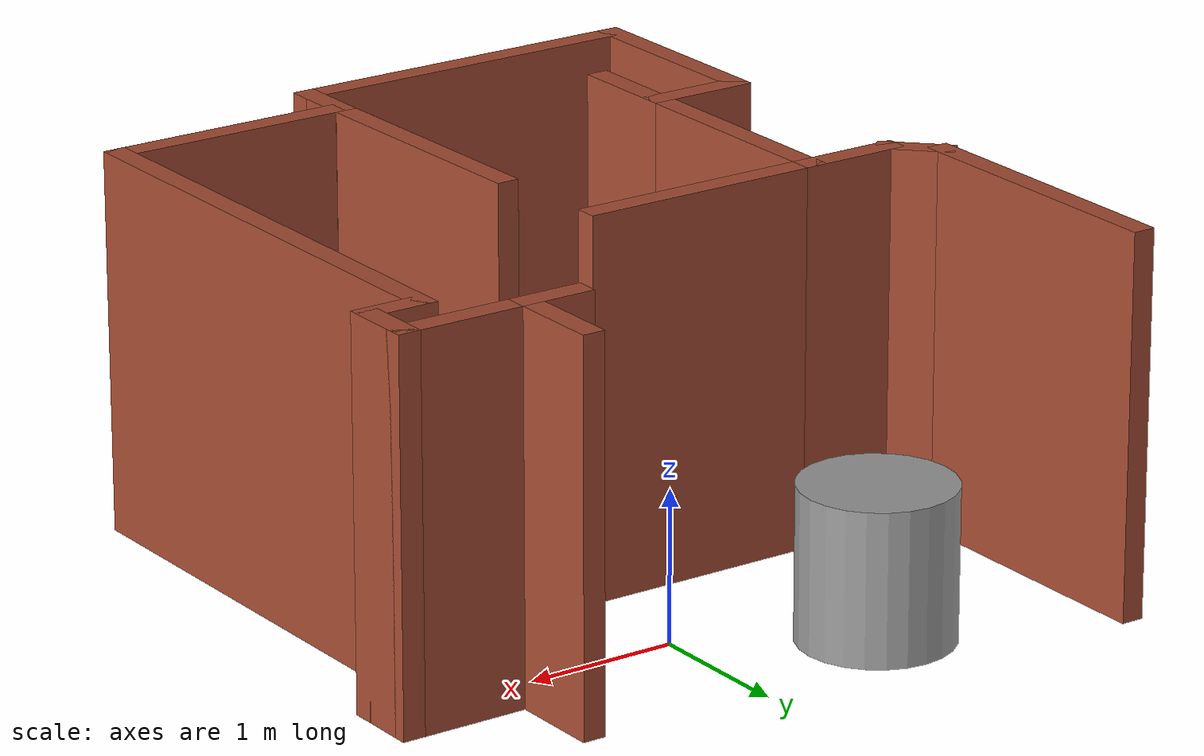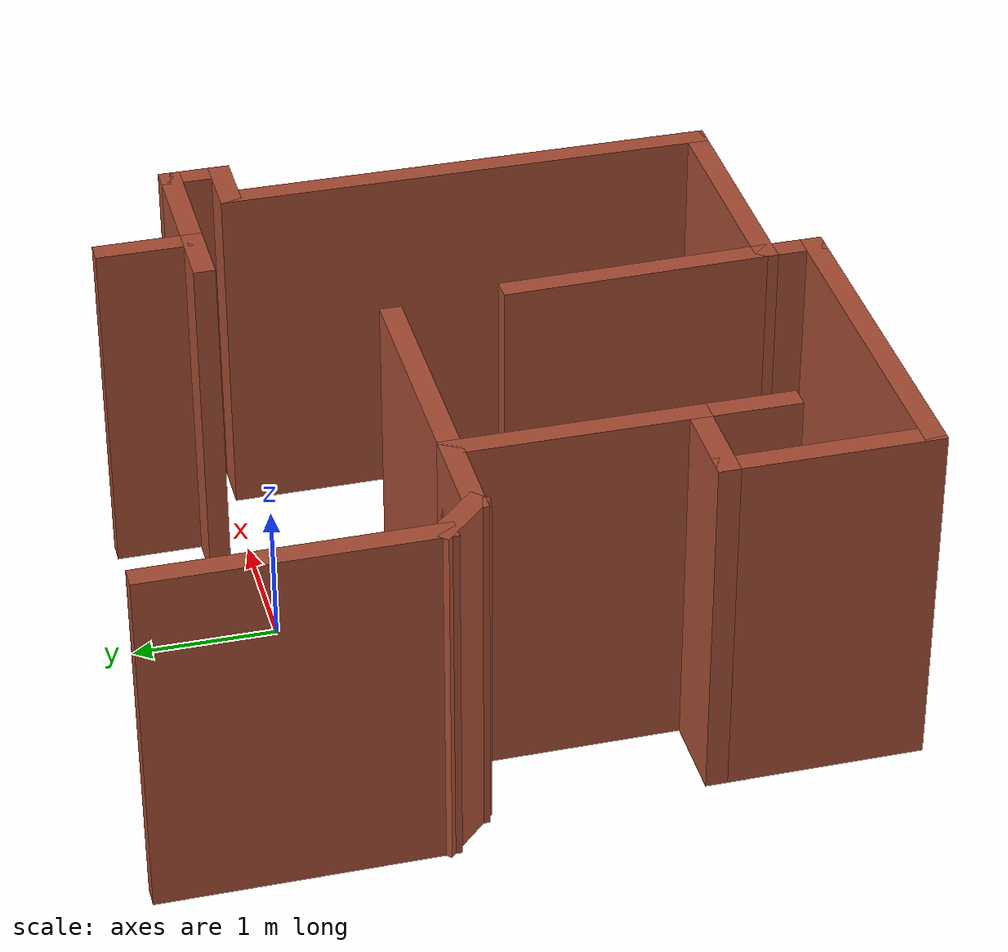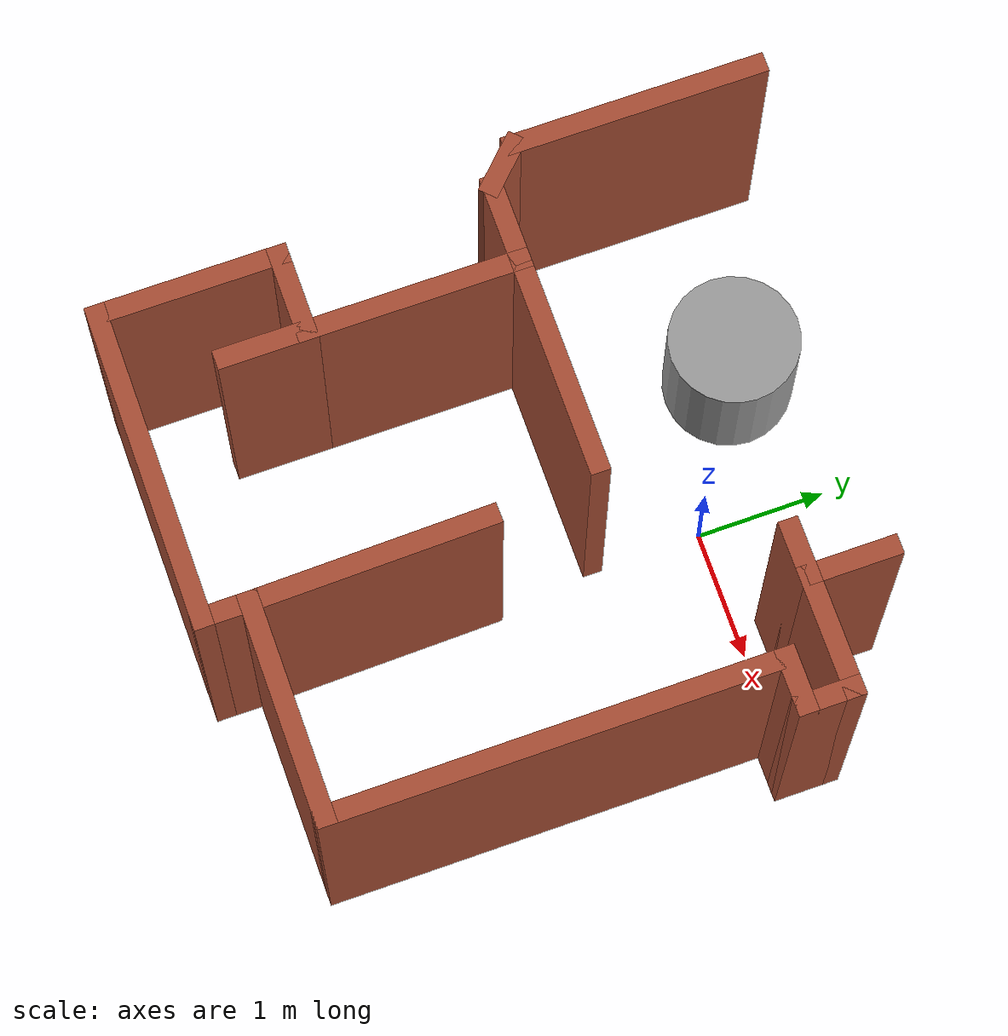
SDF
<sdf version="1.6">
 <model name="map_41">
  <link name="Wall_10">
   <pose>-2.38447 -0.733575 0 0 0 -0.785398</pose>
   <visual name="Wall_10_Visual">
    <pose>0 0 1.25 0 -0 0</pose>
    <geometry><box><size>0.5 0.15 2.5</size></box></geometry>
    <material>
     <script><uri>file://media/materials/scripts/gazebo.material</uri><name>Gazebo/Bricks</name></script>
     <ambient>1 1 1 1</ambient>
     <shader type="pixel"/>
    </material>
    <meta><layer>0</layer></meta>
   </visual>
   <collision name="Wall_10_Collision">
    <pose>0 0 1.25 0 -0 0</pose>
    <geometry><box><size>0.5 0.15 2.5</size></box></geometry>
    <surface>
     <friction>
      <ode><mu>1</mu><mu2>1</mu2><fdir1>0 0 0</fdir1><slip1>0</slip1><slip2>0</slip2></ode>
      <torsional>
       <coefficient>1</coefficient>
       <patch_radius>0</patch_radius>
       <surface_radius>0</surface_radius>
       <use_patch_radius>1</use_patch_radius>
       <ode><slip>0</slip></ode>
      </torsional>
     </friction>
     <bounce><restitution_coefficient>0</restitution_coefficient><threshold>1e+06</threshold></bounce>
     <contact>
      <collide_without_contact>0</collide_without_contact>
      <collide_without_contact_bitmask>1</collide_without_contact_bitmask>
      <collide_bitmask>1</collide_bitmask>
      <ode>
       <soft_cfm>0</soft_cfm>
       <soft_erp>0.2</soft_erp>
       <kp>1e+13</kp>
       <kd>1</kd>
       <max_vel>0.01</max_vel>
       <min_depth>0</min_depth>
      </ode>
      <bullet>
       <split_impulse>1</split_impulse>
       <split_impulse_penetration_threshold>-0.01</split_impulse_penetration_threshold>
       <soft_cfm>0</soft_cfm>
       <soft_erp>0.2</soft_erp>
       <kp>1e+13</kp>
       <kd>1</kd>
      </bullet>
     </contact>
    </surface>
   </collision>
  </link>
  <link name="Wall_11">
   <pose>-1.96072 -0.857319 0 0 -0 0</pose>
   <visual name="Wall_11_Visual">
    <pose>0 0 1.25 0 -0 0</pose>
    <geometry><box><size>0.75 0.15 2.5</size></box></geometry>
    <material>
     <script><uri>file://media/materials/scripts/gazebo.material</uri><name>Gazebo/Bricks</name></script>
     <ambient>1 1 1 1</ambient>
     <shader type="pixel"/>
    </material>
    <meta><layer>0</layer></meta>
   </visual>
   <collision name="Wall_11_Collision">
    <pose>0 0 1.25 0 -0 0</pose>
    <geometry><box><size>0.75 0.15 2.5</size></box></geometry>
    <surface>
     <friction>
      <ode><mu>1</mu><mu2>1</mu2><fdir1>0 0 0</fdir1><slip1>0</slip1><slip2>0</slip2></ode>
      <torsional>
       <coefficient>1</coefficient>
       <patch_radius>0</patch_radius>
       <surface_radius>0</surface_radius>
       <use_patch_radius>1</use_patch_radius>
       <ode><slip>0</slip></ode>
      </torsional>
     </friction>
     <bounce><restitution_coefficient>0</restitution_coefficient><threshold>1e+06</threshold></bounce>
     <contact>
      <collide_without_contact>0</collide_without_contact>
      <collide_without_contact_bitmask>1</collide_without_contact_bitmask>
      <collide_bitmask>1</collide_bitmask>
      <ode>
       <soft_cfm>0</soft_cfm>
       <soft_erp>0.2</soft_erp>
       <kp>1e+13</kp>
       <kd>1</kd>
       <max_vel>0.01</max_vel>
       <min_depth>0</min_depth>
      </ode>
      <bullet>
       <split_impulse>1</split_impulse>
       <split_impulse_penetration_threshold>-0.01</split_impulse_penetration_threshold>
       <soft_cfm>0</soft_cfm>
       <soft_erp>0.2</soft_erp>
       <kp>1e+13</kp>
       <kd>1</kd>
      </bullet>
     </contact>
    </surface>
   </collision>
  </link>
  <link name="Wall_12">
   <pose>-1.66072 -1.65732 0 0 0 -1.5708</pose>
   <visual name="Wall_12_Visual">
    <pose>0 0 1.25 0 -0 0</pose>
    <geometry><box><size>1.75 0.15 2.5</size></box></geometry>
    <material>
     <script><uri>file://media/materials/scripts/gazebo.material</uri><name>Gazebo/Bricks</name></script>
     <ambient>1 1 1 1</ambient>
     <shader type="pixel"/>
    </material>
    <meta><layer>0</layer></meta>
   </visual>
   <collision name="Wall_12_Collision">
    <pose>0 0 1.25 0 -0 0</pose>
    <geometry><box><size>1.75 0.15 2.5</size></box></geometry>
    <surface>
     <friction>
      <ode><mu>1</mu><mu2>1</mu2><fdir1>0 0 0</fdir1><slip1>0</slip1><slip2>0</slip2></ode>
      <torsional>
       <coefficient>1</coefficient>
       <patch_radius>0</patch_radius>
       <surface_radius>0</surface_radius>
       <use_patch_radius>1</use_patch_radius>
       <ode><slip>0</slip></ode>
      </torsional>
     </friction>
     <bounce><restitution_coefficient>0</restitution_coefficient><threshold>1e+06</threshold></bounce>
     <contact>
      <collide_without_contact>0</collide_without_contact>
      <collide_without_contact_bitmask>1</collide_without_contact_bitmask>
      <collide_bitmask>1</collide_bitmask>
      <ode>
       <soft_cfm>0</soft_cfm>
       <soft_erp>0.2</soft_erp>
       <kp>1e+13</kp>
       <kd>1</kd>
       <max_vel>0.01</max_vel>
       <min_depth>0</min_depth>
      </ode>
      <bullet>
       <split_impulse>1</split_impulse>
       <split_impulse_penetration_threshold>-0.01</split_impulse_penetration_threshold>
       <soft_cfm>0</soft_cfm>
       <soft_erp>0.2</soft_erp>
       <kp>1e+13</kp>
       <kd>1</kd>
      </bullet>
     </contact>
    </surface>
   </collision>
  </link>
  <link name="Wall_13">
   <pose>-1.96072 -2.45732 0 0 -0 3.14159</pose>
   <visual name="Wall_13_Visual">
    <pose>0 0 1.25 0 -0 0</pose>
    <geometry><box><size>0.75 0.15 2.5</size></box></geometry>
    <material>
     <script><uri>file://media/materials/scripts/gazebo.material</uri><name>Gazebo/Bricks</name></script>
     <ambient>1 1 1 1</ambient>
     <shader type="pixel"/>
    </material>
    <meta><layer>0</layer></meta>
   </visual>
   <collision name="Wall_13_Collision">
    <pose>0 0 1.25 0 -0 0</pose>
    <geometry><box><size>0.75 0.15 2.5</size></box></geometry>
    <surface>
     <friction>
      <ode><mu>1</mu><mu2>1</mu2><fdir1>0 0 0</fdir1><slip1>0</slip1><slip2>0</slip2></ode>
      <torsional>
       <coefficient>1</coefficient>
       <patch_radius>0</patch_radius>
       <surface_radius>0</surface_radius>
       <use_patch_radius>1</use_patch_radius>
       <ode><slip>0</slip></ode>
      </torsional>
     </friction>
     <bounce><restitution_coefficient>0</restitution_coefficient><threshold>1e+06</threshold></bounce>
     <contact>
      <collide_without_contact>0</collide_without_contact>
      <collide_without_contact_bitmask>1</collide_without_contact_bitmask>
      <collide_bitmask>1</collide_bitmask>
      <ode>
       <soft_cfm>0</soft_cfm>
       <soft_erp>0.2</soft_erp>
       <kp>1e+13</kp>
       <kd>1</kd>
       <max_vel>0.01</max_vel>
       <min_depth>0</min_depth>
      </ode>
      <bullet>
       <split_impulse>1</split_impulse>
       <split_impulse_penetration_threshold>-0.01</split_impulse_penetration_threshold>
       <soft_cfm>0</soft_cfm>
       <soft_erp>0.2</soft_erp>
       <kp>1e+13</kp>
       <kd>1</kd>
      </bullet>
     </contact>
    </surface>
   </collision>
  </link>
  <link name="Wall_14">
   <pose>-2.26072 -3.13232 0 0 0 -1.5708</pose>
   <visual name="Wall_14_Visual">
    <pose>0 0 1.25 0 -0 0</pose>
    <geometry><box><size>1.5 0.15 2.5</size></box></geometry>
    <material>
     <script><uri>file://media/materials/scripts/gazebo.material</uri><name>Gazebo/Bricks</name></script>
     <ambient>1 1 1 1</ambient>
     <shader type="pixel"/>
    </material>
    <meta><layer>0</layer></meta>
   </visual>
   <collision name="Wall_14_Collision">
    <pose>0 0 1.25 0 -0 0</pose>
    <geometry><box><size>1.5 0.15 2.5</size></box></geometry>
    <surface>
     <friction>
      <ode><mu>1</mu><mu2>1</mu2><fdir1>0 0 0</fdir1><slip1>0</slip1><slip2>0</slip2></ode>
      <torsional>
       <coefficient>1</coefficient>
       <patch_radius>0</patch_radius>
       <surface_radius>0</surface_radius>
       <use_patch_radius>1</use_patch_radius>
       <ode><slip>0</slip></ode>
      </torsional>
     </friction>
     <bounce><restitution_coefficient>0</restitution_coefficient><threshold>1e+06</threshold></bounce>
     <contact>
      <collide_without_contact>0</collide_without_contact>
      <collide_without_contact_bitmask>1</collide_without_contact_bitmask>
      <collide_bitmask>1</collide_bitmask>
      <ode>
       <soft_cfm>0</soft_cfm>
       <soft_erp>0.2</soft_erp>
       <kp>1e+13</kp>
       <kd>1</kd>
       <max_vel>0.01</max_vel>
       <min_depth>0</min_depth>
      </ode>
      <bullet>
       <split_impulse>1</split_impulse>
       <split_impulse_penetration_threshold>-0.01</split_impulse_penetration_threshold>
       <soft_cfm>0</soft_cfm>
       <soft_erp>0.2</soft_erp>
       <kp>1e+13</kp>
       <kd>1</kd>
      </bullet>
     </contact>
    </surface>
   </collision>
  </link>
  <link name="Wall_15">
   <pose>-1.08572 -3.80732 0 0 -0 0</pose>
   <visual name="Wall_15_Visual">
    <pose>0 0 1.25 0 -0 0</pose>
    <geometry><box><size>2.5 0.15 2.5</size></box></geometry>
    <material>
     <script><uri>file://media/materials/scripts/gazebo.material</uri><name>Gazebo/Bricks</name></script>
     <ambient>1 1 1 1</ambient>
     <shader type="pixel"/>
    </material>
    <meta><layer>0</layer></meta>
   </visual>
   <collision name="Wall_15_Collision">
    <pose>0 0 1.25 0 -0 0</pose>
    <geometry><box><size>2.5 0.15 2.5</size></box></geometry>
    <surface>
     <friction>
      <ode><mu>1</mu><mu2>1</mu2><fdir1>0 0 0</fdir1><slip1>0</slip1><slip2>0</slip2></ode>
      <torsional>
       <coefficient>1</coefficient>
       <patch_radius>0</patch_radius>
       <surface_radius>0</surface_radius>
       <use_patch_radius>1</use_patch_radius>
       <ode><slip>0</slip></ode>
      </torsional>
     </friction>
     <bounce><restitution_coefficient>0</restitution_coefficient><threshold>1e+06</threshold></bounce>
     <contact>
      <collide_without_contact>0</collide_without_contact>
      <collide_without_contact_bitmask>1</collide_without_contact_bitmask>
      <collide_bitmask>1</collide_bitmask>
      <ode>
       <soft_cfm>0</soft_cfm>
       <soft_erp>0.2</soft_erp>
       <kp>1e+13</kp>
       <kd>1</kd>
       <max_vel>0.01</max_vel>
       <min_depth>0</min_depth>
      </ode>
      <bullet>
       <split_impulse>1</split_impulse>
       <split_impulse_penetration_threshold>-0.01</split_impulse_penetration_threshold>
       <soft_cfm>0</soft_cfm>
       <soft_erp>0.2</soft_erp>
       <kp>1e+13</kp>
       <kd>1</kd>
      </bullet>
     </contact>
    </surface>
   </collision>
  </link>
  <link name="Wall_16">
   <pose>0.089277 -3.63232 0 0 -0 1.5708</pose>
   <visual name="Wall_16_Visual">
    <pose>0 0 1.25 0 -0 0</pose>
    <geometry><box><size>0.5 0.15 2.5</size></box></geometry>
    <material>
     <script><uri>file://media/materials/scripts/gazebo.material</uri><name>Gazebo/Bricks</name></script>
     <ambient>1 1 1 1</ambient>
     <shader type="pixel"/>
    </material>
    <meta><layer>0</layer></meta>
   </visual>
   <collision name="Wall_16_Collision">
    <pose>0 0 1.25 0 -0 0</pose>
    <geometry><box><size>0.5 0.15 2.5</size></box></geometry>
    <surface>
     <friction>
      <ode><mu>1</mu><mu2>1</mu2><fdir1>0 0 0</fdir1><slip1>0</slip1><slip2>0</slip2></ode>
      <torsional>
       <coefficient>1</coefficient>
       <patch_radius>0</patch_radius>
       <surface_radius>0</surface_radius>
       <use_patch_radius>1</use_patch_radius>
       <ode><slip>0</slip></ode>
      </torsional>
     </friction>
     <bounce><restitution_coefficient>0</restitution_coefficient><threshold>1e+06</threshold></bounce>
     <contact>
      <collide_without_contact>0</collide_without_contact>
      <collide_without_contact_bitmask>1</collide_without_contact_bitmask>
      <collide_bitmask>1</collide_bitmask>
      <ode>
       <soft_cfm>0</soft_cfm>
       <soft_erp>0.2</soft_erp>
       <kp>1e+13</kp>
       <kd>1</kd>
       <max_vel>0.01</max_vel>
       <min_depth>0</min_depth>
      </ode>
      <bullet>
       <split_impulse>1</split_impulse>
       <split_impulse_penetration_threshold>-0.01</split_impulse_penetration_threshold>
       <soft_cfm>0</soft_cfm>
       <soft_erp>0.2</soft_erp>
       <kp>1e+13</kp>
       <kd>1</kd>
      </bullet>
     </contact>
    </surface>
   </collision>
  </link>
  <link name="Wall_19">
   <pose>0.889277 -3.45732 0 0 -0 0</pose>
   <visual name="Wall_19_Visual">
    <pose>0 0 1.25 0 -0 0</pose>
    <geometry><box><size>1.75 0.15 2.5</size></box></geometry>
    <material>
     <script><uri>file://media/materials/scripts/gazebo.material</uri><name>Gazebo/Bricks</name></script>
     <ambient>1 1 1 1</ambient>
     <shader type="pixel"/>
    </material>
    <meta><layer>0</layer></meta>
   </visual>
   <collision name="Wall_19_Collision">
    <pose>0 0 1.25 0 -0 0</pose>
    <geometry><box><size>1.75 0.15 2.5</size></box></geometry>
    <surface>
     <friction>
      <ode><mu>1</mu><mu2>1</mu2><fdir1>0 0 0</fdir1><slip1>0</slip1><slip2>0</slip2></ode>
      <torsional>
       <coefficient>1</coefficient>
       <patch_radius>0</patch_radius>
       <surface_radius>0</surface_radius>
       <use_patch_radius>1</use_patch_radius>
       <ode><slip>0</slip></ode>
      </torsional>
     </friction>
     <bounce><restitution_coefficient>0</restitution_coefficient><threshold>1e+06</threshold></bounce>
     <contact>
      <collide_without_contact>0</collide_without_contact>
      <collide_without_contact_bitmask>1</collide_without_contact_bitmask>
      <collide_bitmask>1</collide_bitmask>
      <ode>
       <soft_cfm>0</soft_cfm>
       <soft_erp>0.2</soft_erp>
       <kp>1e+13</kp>
       <kd>1</kd>
       <max_vel>0.01</max_vel>
       <min_depth>0</min_depth>
      </ode>
      <bullet>
       <split_impulse>1</split_impulse>
       <split_impulse_penetration_threshold>-0.01</split_impulse_penetration_threshold>
       <soft_cfm>0</soft_cfm>
       <soft_erp>0.2</soft_erp>
       <kp>1e+13</kp>
       <kd>1</kd>
      </bullet>
     </contact>
    </surface>
   </collision>
  </link>
  <link name="Wall_20">
   <pose>1.68928 -1.78232 0 0 -0 1.5708</pose>
   <visual name="Wall_20_Visual">
    <pose>0 0 1.25 0 -0 0</pose>
    <geometry><box><size>3.5 0.15 2.5</size></box></geometry>
    <material>
     <script><uri>file://media/materials/scripts/gazebo.material</uri><name>Gazebo/Bricks</name></script>
     <ambient>1 1 1 1</ambient>
     <shader type="pixel"/>
    </material>
    <meta><layer>0</layer></meta>
   </visual>
   <collision name="Wall_20_Collision">
    <pose>0 0 1.25 0 -0 0</pose>
    <geometry><box><size>3.5 0.15 2.5</size></box></geometry>
    <surface>
     <friction>
      <ode><mu>1</mu><mu2>1</mu2><fdir1>0 0 0</fdir1><slip1>0</slip1><slip2>0</slip2></ode>
      <torsional>
       <coefficient>1</coefficient>
       <patch_radius>0</patch_radius>
       <surface_radius>0</surface_radius>
       <use_patch_radius>1</use_patch_radius>
       <ode><slip>0</slip></ode>
      </torsional>
     </friction>
     <bounce><restitution_coefficient>0</restitution_coefficient><threshold>1e+06</threshold></bounce>
     <contact>
      <collide_without_contact>0</collide_without_contact>
      <collide_without_contact_bitmask>1</collide_without_contact_bitmask>
      <collide_bitmask>1</collide_bitmask>
      <ode>
       <soft_cfm>0</soft_cfm>
       <soft_erp>0.2</soft_erp>
       <kp>1e+13</kp>
       <kd>1</kd>
       <max_vel>0.01</max_vel>
       <min_depth>0</min_depth>
      </ode>
      <bullet>
       <split_impulse>1</split_impulse>
       <split_impulse_penetration_threshold>-0.01</split_impulse_penetration_threshold>
       <soft_cfm>0</soft_cfm>
       <soft_erp>0.2</soft_erp>
       <kp>1e+13</kp>
       <kd>1</kd>
      </bullet>
     </contact>
    </surface>
   </collision>
  </link>
  <link name="Wall_21">
   <pose>1.86428 -0.107319 0 0 -0 0</pose>
   <visual name="Wall_21_Visual">
    <pose>0 0 1.25 0 -0 0</pose>
    <geometry><box><size>0.5 0.15 2.5</size></box></geometry>
    <material>
     <script><uri>file://media/materials/scripts/gazebo.material</uri><name>Gazebo/Bricks</name></script>
     <ambient>1 1 1 1</ambient>
     <shader type="pixel"/>
    </material>
    <meta><layer>0</layer></meta>
   </visual>
   <collision name="Wall_21_Collision">
    <pose>0 0 1.25 0 -0 0</pose>
    <geometry><box><size>0.5 0.15 2.5</size></box></geometry>
    <surface>
     <friction>
      <ode><mu>1</mu><mu2>1</mu2><fdir1>0 0 0</fdir1><slip1>0</slip1><slip2>0</slip2></ode>
      <torsional>
       <coefficient>1</coefficient>
       <patch_radius>0</patch_radius>
       <surface_radius>0</surface_radius>
       <use_patch_radius>1</use_patch_radius>
       <ode><slip>0</slip></ode>
      </torsional>
     </friction>
     <bounce><restitution_coefficient>0</restitution_coefficient><threshold>1e+06</threshold></bounce>
     <contact>
      <collide_without_contact>0</collide_without_contact>
      <collide_without_contact_bitmask>1</collide_without_contact_bitmask>
      <collide_bitmask>1</collide_bitmask>
      <ode>
       <soft_cfm>0</soft_cfm>
       <soft_erp>0.2</soft_erp>
       <kp>1e+13</kp>
       <kd>1</kd>
       <max_vel>0.01</max_vel>
       <min_depth>0</min_depth>
      </ode>
      <bullet>
       <split_impulse>1</split_impulse>
       <split_impulse_penetration_threshold>-0.01</split_impulse_penetration_threshold>
       <soft_cfm>0</soft_cfm>
       <soft_erp>0.2</soft_erp>
       <kp>1e+13</kp>
       <kd>1</kd>
      </bullet>
     </contact>
    </surface>
   </collision>
  </link>
  <link name="Wall_22">
   <pose>2.03928 0.067681 0 0 -0 1.5708</pose>
   <visual name="Wall_22_Visual">
    <pose>0 0 1.25 0 -0 0</pose>
    <geometry><box><size>0.5 0.15 2.5</size></box></geometry>
    <material>
     <script><uri>file://media/materials/scripts/gazebo.material</uri><name>Gazebo/Bricks</name></script>
     <ambient>1 1 1 1</ambient>
     <shader type="pixel"/>
    </material>
    <meta><layer>0</layer></meta>
   </visual>
   <collision name="Wall_22_Collision">
    <pose>0 0 1.25 0 -0 0</pose>
    <geometry><box><size>0.5 0.15 2.5</size></box></geometry>
    <surface>
     <friction>
      <ode><mu>1</mu><mu2>1</mu2><fdir1>0 0 0</fdir1><slip1>0</slip1><slip2>0</slip2></ode>
      <torsional>
       <coefficient>1</coefficient>
       <patch_radius>0</patch_radius>
       <surface_radius>0</surface_radius>
       <use_patch_radius>1</use_patch_radius>
       <ode><slip>0</slip></ode>
      </torsional>
     </friction>
     <bounce><restitution_coefficient>0</restitution_coefficient><threshold>1e+06</threshold></bounce>
     <contact>
      <collide_without_contact>0</collide_without_contact>
      <collide_without_contact_bitmask>1</collide_without_contact_bitmask>
      <collide_bitmask>1</collide_bitmask>
      <ode>
       <soft_cfm>0</soft_cfm>
       <soft_erp>0.2</soft_erp>
       <kp>1e+13</kp>
       <kd>1</kd>
       <max_vel>0.01</max_vel>
       <min_depth>0</min_depth>
      </ode>
      <bullet>
       <split_impulse>1</split_impulse>
       <split_impulse_penetration_threshold>-0.01</split_impulse_penetration_threshold>
       <soft_cfm>0</soft_cfm>
       <soft_erp>0.2</soft_erp>
       <kp>1e+13</kp>
       <kd>1</kd>
      </bullet>
     </contact>
    </surface>
   </collision>
  </link>
  <link name="Wall_24">
   <pose>-0.860723 -0.857319 0 0 -0 0</pose>
   <visual name="Wall_24_Visual">
    <pose>0 0 1.25 0 -0 0</pose>
    <geometry><box><size>1.75 0.15 2.5</size></box></geometry>
    <material>
     <script><uri>file://media/materials/scripts/gazebo.material</uri><name>Gazebo/Bricks</name></script>
     <ambient>1 1 1 1</ambient>
     <shader type="pixel"/>
    </material>
    <meta><layer>0</layer></meta>
   </visual>
   <collision name="Wall_24_Collision">
    <pose>0 0 1.25 0 -0 0</pose>
    <geometry><box><size>1.75 0.15 2.5</size></box></geometry>
    <surface>
     <friction>
      <ode><mu>1</mu><mu2>1</mu2><fdir1>0 0 0</fdir1><slip1>0</slip1><slip2>0</slip2></ode>
      <torsional>
       <coefficient>1</coefficient>
       <patch_radius>0</patch_radius>
       <surface_radius>0</surface_radius>
       <use_patch_radius>1</use_patch_radius>
       <ode><slip>0</slip></ode>
      </torsional>
     </friction>
     <bounce><restitution_coefficient>0</restitution_coefficient><threshold>1e+06</threshold></bounce>
     <contact>
      <collide_without_contact>0</collide_without_contact>
      <collide_without_contact_bitmask>1</collide_without_contact_bitmask>
      <collide_bitmask>1</collide_bitmask>
      <ode>
       <soft_cfm>0</soft_cfm>
       <soft_erp>0.2</soft_erp>
       <kp>1e+13</kp>
       <kd>1</kd>
       <max_vel>0.01</max_vel>
       <min_depth>0</min_depth>
      </ode>
      <bullet>
       <split_impulse>1</split_impulse>
       <split_impulse_penetration_threshold>-0.01</split_impulse_penetration_threshold>
       <soft_cfm>0</soft_cfm>
       <soft_erp>0.2</soft_erp>
       <kp>1e+13</kp>
       <kd>1</kd>
      </bullet>
     </contact>
    </surface>
   </collision>
  </link>
  <link name="Wall_26">
   <pose>0.0726 -2.57559 0 0 0 -1.55188</pose>
   <visual name="Wall_26_Visual">
    <pose>0 0 1.25 0 -0 0</pose>
    <geometry><box><size>1.91378 0.15 2.5</size></box></geometry>
    <material>
     <script><uri>file://media/materials/scripts/gazebo.material</uri><name>Gazebo/Bricks</name></script>
     <ambient>1 1 1 1</ambient>
     <shader type="pixel"/>
    </material>
    <meta><layer>0</layer></meta>
   </visual>
   <collision name="Wall_26_Collision">
    <pose>0 0 1.25 0 -0 0</pose>
    <geometry><box><size>1.91378 0.15 2.5</size></box></geometry>
    <surface>
     <friction>
      <ode><mu>1</mu><mu2>1</mu2><fdir1>0 0 0</fdir1><slip1>0</slip1><slip2>0</slip2></ode>
      <torsional>
       <coefficient>1</coefficient>
       <patch_radius>0</patch_radius>
       <surface_radius>0</surface_radius>
       <use_patch_radius>1</use_patch_radius>
       <ode><slip>0</slip></ode>
      </torsional>
     </friction>
     <bounce><restitution_coefficient>0</restitution_coefficient><threshold>1e+06</threshold></bounce>
     <contact>
      <collide_without_contact>0</collide_without_contact>
      <collide_without_contact_bitmask>1</collide_without_contact_bitmask>
      <collide_bitmask>1</collide_bitmask>
      <ode>
       <soft_cfm>0</soft_cfm>
       <soft_erp>0.2</soft_erp>
       <kp>1e+13</kp>
       <kd>1</kd>
       <max_vel>0.01</max_vel>
       <min_depth>0</min_depth>
      </ode>
      <bullet>
       <split_impulse>1</split_impulse>
       <split_impulse_penetration_threshold>-0.01</split_impulse_penetration_threshold>
       <soft_cfm>0</soft_cfm>
       <soft_erp>0.2</soft_erp>
       <kp>1e+13</kp>
       <kd>1</kd>
      </bullet>
     </contact>
    </surface>
   </collision>
  </link>
  <link name="Wall_30">
   <pose>-1.66072 -2.75732 0 0 0 -1.5708</pose>
   <visual name="Wall_30_Visual">
    <pose>0 0 1.25 0 -0 0</pose>
    <geometry><box><size>0.75 0.15 2.5</size></box></geometry>
    <material>
     <script><uri>file://media/materials/scripts/gazebo.material</uri><name>Gazebo/Bricks</name></script>
     <ambient>1 1 1 1</ambient>
     <shader type="pixel"/>
    </material>
    <meta><layer>0</layer></meta>
   </visual>
   <collision name="Wall_30_Collision">
    <pose>0 0 1.25 0 -0 0</pose>
    <geometry><box><size>0.75 0.15 2.5</size></box></geometry>
    <surface>
     <friction>
      <ode><mu>1</mu><mu2>1</mu2><fdir1>0 0 0</fdir1><slip1>0</slip1><slip2>0</slip2></ode>
      <torsional>
       <coefficient>1</coefficient>
       <patch_radius>0</patch_radius>
       <surface_radius>0</surface_radius>
       <use_patch_radius>1</use_patch_radius>
       <ode><slip>0</slip></ode>
      </torsional>
     </friction>
     <bounce><restitution_coefficient>0</restitution_coefficient><threshold>1e+06</threshold></bounce>
     <contact>
      <collide_without_contact>0</collide_without_contact>
      <collide_without_contact_bitmask>1</collide_without_contact_bitmask>
      <collide_bitmask>1</collide_bitmask>
      <ode>
       <soft_cfm>0</soft_cfm>
       <soft_erp>0.2</soft_erp>
       <kp>1e+13</kp>
       <kd>1</kd>
       <max_vel>0.01</max_vel>
       <min_depth>0</min_depth>
      </ode>
      <bullet>
       <split_impulse>1</split_impulse>
       <split_impulse_penetration_threshold>-0.01</split_impulse_penetration_threshold>
       <soft_cfm>0</soft_cfm>
       <soft_erp>0.2</soft_erp>
       <kp>1e+13</kp>
       <kd>1</kd>
      </bullet>
     </contact>
    </surface>
   </collision>
  </link>
  <link name="Wall_32">
   <pose>1.61428 0.242681 0 0 -0 3.14159</pose>
   <visual name="Wall_32_Visual">
    <pose>0 0 1.25 0 -0 0</pose>
    <geometry><box><size>1 0.15 2.5</size></box></geometry>
    <material>
     <script><uri>file://media/materials/scripts/gazebo.material</uri><name>Gazebo/Bricks</name></script>
     <ambient>1 1 1 1</ambient>
     <shader type="pixel"/>
    </material>
    <meta><layer>0</layer></meta>
   </visual>
   <collision name="Wall_32_Collision">
    <pose>0 0 1.25 0 -0 0</pose>
    <geometry><box><size>1 0.15 2.5</size></box></geometry>
    <surface>
     <friction>
      <ode><mu>1</mu><mu2>1</mu2><fdir1>0 0 0</fdir1><slip1>0</slip1><slip2>0</slip2></ode>
      <torsional>
       <coefficient>1</coefficient>
       <patch_radius>0</patch_radius>
       <surface_radius>0</surface_radius>
       <use_patch_radius>1</use_patch_radius>
       <ode><slip>0</slip></ode>
      </torsional>
     </friction>
     <bounce><restitution_coefficient>0</restitution_coefficient><threshold>1e+06</threshold></bounce>
     <contact>
      <collide_without_contact>0</collide_without_contact>
      <collide_without_contact_bitmask>1</collide_without_contact_bitmask>
      <collide_bitmask>1</collide_bitmask>
      <ode>
       <soft_cfm>0</soft_cfm>
       <soft_erp>0.2</soft_erp>
       <kp>1e+13</kp>
       <kd>1</kd>
       <max_vel>0.01</max_vel>
       <min_depth>0</min_depth>
      </ode>
      <bullet>
       <split_impulse>1</split_impulse>
       <split_impulse_penetration_threshold>-0.01</split_impulse_penetration_threshold>
       <soft_cfm>0</soft_cfm>
       <soft_erp>0.2</soft_erp>
       <kp>1e+13</kp>
       <kd>1</kd>
      </bullet>
     </contact>
    </surface>
   </collision>
  </link>
  <link name="Wall_35">
   <pose>1.18928 0.542681 0 0 -0 1.5708</pose>
   <visual name="Wall_35_Visual">
    <pose>0 0 1.25 0 -0 0</pose>
    <geometry><box><size>0.75 0.15 2.5</size></box></geometry>
    <material>
     <script><uri>file://media/materials/scripts/gazebo.material</uri><name>Gazebo/Bricks</name></script>
     <ambient>1 1 1 1</ambient>
     <shader type="pixel"/>
    </material>
    <meta><layer>0</layer></meta>
   </visual>
   <collision name="Wall_35_Collision">
    <pose>0 0 1.25 0 -0 0</pose>
    <geometry><box><size>0.75 0.15 2.5</size></box></geometry>
    <surface>
     <friction>
      <ode><mu>1</mu><mu2>1</mu2><fdir1>0 0 0</fdir1><slip1>0</slip1><slip2>0</slip2></ode>
      <torsional>
       <coefficient>1</coefficient>
       <patch_radius>0</patch_radius>
       <surface_radius>0</surface_radius>
       <use_patch_radius>1</use_patch_radius>
       <ode><slip>0</slip></ode>
      </torsional>
     </friction>
     <bounce><restitution_coefficient>0</restitution_coefficient><threshold>1e+06</threshold></bounce>
     <contact>
      <collide_without_contact>0</collide_without_contact>
      <collide_without_contact_bitmask>1</collide_without_contact_bitmask>
      <collide_bitmask>1</collide_bitmask>
      <ode>
       <soft_cfm>0</soft_cfm>
       <soft_erp>0.2</soft_erp>
       <kp>1e+13</kp>
       <kd>1</kd>
       <max_vel>0.01</max_vel>
       <min_depth>0</min_depth>
      </ode>
      <bullet>
       <split_impulse>1</split_impulse>
       <split_impulse_penetration_threshold>-0.01</split_impulse_penetration_threshold>
       <soft_cfm>0</soft_cfm>
       <soft_erp>0.2</soft_erp>
       <kp>1e+13</kp>
       <kd>1</kd>
      </bullet>
     </contact>
    </surface>
   </collision>
  </link>
  <link name="Wall_58">
   <pose>1.01428 0.242681 0 0 -0 3.14159</pose>
   <visual name="Wall_58_Visual">
    <pose>0 0 1.25 0 -0 0</pose>
    <geometry><box><size>0.5 0.15 2.5</size></box></geometry>
    <material>
     <script><uri>file://media/materials/scripts/gazebo.material</uri><name>Gazebo/Bricks</name></script>
     <ambient>1 1 1 1</ambient>
     <shader type="pixel"/>
    </material>
    <meta><layer>0</layer></meta>
   </visual>
   <collision name="Wall_58_Collision">
    <pose>0 0 1.25 0 -0 0</pose>
    <geometry><box><size>0.5 0.15 2.5</size></box></geometry>
    <surface>
     <friction>
      <ode><mu>1</mu><mu2>1</mu2><fdir1>0 0 0</fdir1><slip1>0</slip1><slip2>0</slip2></ode>
      <torsional>
       <coefficient>1</coefficient>
       <patch_radius>0</patch_radius>
       <surface_radius>0</surface_radius>
       <use_patch_radius>1</use_patch_radius>
       <ode><slip>0</slip></ode>
      </torsional>
     </friction>
     <bounce><restitution_coefficient>0</restitution_coefficient><threshold>1e+06</threshold></bounce>
     <contact>
      <collide_without_contact>0</collide_without_contact>
      <collide_without_contact_bitmask>1</collide_without_contact_bitmask>
      <collide_bitmask>1</collide_bitmask>
      <ode>
       <soft_cfm>0</soft_cfm>
       <soft_erp>0.2</soft_erp>
       <kp>1e+13</kp>
       <kd>1</kd>
       <max_vel>0.01</max_vel>
       <min_depth>0</min_depth>
      </ode>
      <bullet>
       <split_impulse>1</split_impulse>
       <split_impulse_penetration_threshold>-0.01</split_impulse_penetration_threshold>
       <soft_cfm>0</soft_cfm>
       <soft_erp>0.2</soft_erp>
       <kp>1e+13</kp>
       <kd>1</kd>
      </bullet>
     </contact>
    </surface>
   </collision>
  </link>
  <link name="Wall_9">
   <pose>-2.50821 0.315168 0 0 0 -1.5708</pose>
   <visual name="Wall_9_Visual">
    <pose>0 0 1.25 0 -0 0</pose>
    <geometry><box><size>2 0.15 2.5</size></box></geometry>
    <material>
     <script><uri>file://media/materials/scripts/gazebo.material</uri><name>Gazebo/Bricks</name></script>
     <ambient>1 1 1 1</ambient>
     <shader type="pixel"/>
    </material>
    <meta><layer>0</layer></meta>
   </visual>
   <collision name="Wall_9_Collision">
    <pose>0 0 1.25 0 -0 0</pose>
    <geometry><box><size>2 0.15 2.5</size></box></geometry>
    <surface>
     <friction>
      <ode><mu>1</mu><mu2>1</mu2><fdir1>0 0 0</fdir1><slip1>0</slip1><slip2>0</slip2></ode>
      <torsional>
       <coefficient>1</coefficient>
       <patch_radius>0</patch_radius>
       <surface_radius>0</surface_radius>
       <use_patch_radius>1</use_patch_radius>
       <ode><slip>0</slip></ode>
      </torsional>
     </friction>
     <bounce><restitution_coefficient>0</restitution_coefficient><threshold>1e+06</threshold></bounce>
     <contact>
      <collide_without_contact>0</collide_without_contact>
      <collide_without_contact_bitmask>1</collide_without_contact_bitmask>
      <collide_bitmask>1</collide_bitmask>
      <ode>
       <soft_cfm>0</soft_cfm>
       <soft_erp>0.2</soft_erp>
       <kp>1e+13</kp>
       <kd>1</kd>
       <max_vel>0.01</max_vel>
       <min_depth>0</min_depth>
      </ode>
      <bullet>
       <split_impulse>1</split_impulse>
       <split_impulse_penetration_threshold>-0.01</split_impulse_penetration_threshold>
       <soft_cfm>0</soft_cfm>
       <soft_erp>0.2</soft_erp>
       <kp>1e+13</kp>
       <kd>1</kd>
      </bullet>
     </contact>
    </surface>
   </collision>
  </link>
  <link name="link_2">
   <inertial>
    <mass>1</mass>
    <inertia><ixx>0.145833</ixx><ixy>0</ixy><ixz>0</ixz><iyy>0.145833</iyy><iyz>0</iyz><izz>0.125</izz></inertia>
   </inertial>
   <pose>-1.07428 0.631568 0.5 0 -0 0</pose>
   <visual name="visual">
    <geometry><cylinder><radius>0.5</radius><length>1</length></cylinder></geometry>
    <material>
     <lighting>1</lighting>
     <script><uri>file://media/materials/scripts/gazebo.material</uri><name>Gazebo/Grey</name></script>
     <shader type="pixel"/>
    </material>
   </visual>
   <collision name="collision">
    <geometry><cylinder><radius>0.5</radius><length>1</length></cylinder></geometry>
    <surface>
     <friction>
      <ode><mu>1</mu><mu2>1</mu2><fdir1>0 0 0</fdir1><slip1>0</slip1><slip2>0</slip2></ode>
      <torsional>
       <coefficient>1</coefficient>
       <patch_radius>0</patch_radius>
       <surface_radius>0</surface_radius>
       <use_patch_radius>1</use_patch_radius>
       <ode><slip>0</slip></ode>
      </torsional>
     </friction>
     <bounce><restitution_coefficient>0</restitution_coefficient><threshold>1e+06</threshold></bounce>
     <contact>
      <collide_without_contact>0</collide_without_contact>
      <collide_without_contact_bitmask>1</collide_without_contact_bitmask>
      <collide_bitmask>1</collide_bitmask>
      <ode>
       <soft_cfm>0</soft_cfm>
       <soft_erp>0.2</soft_erp>
       <kp>1e+13</kp>
       <kd>1</kd>
       <max_vel>0.01</max_vel>
       <min_depth>0</min_depth>
      </ode>
      <bullet>
       <split_impulse>1</split_impulse>
       <split_impulse_penetration_threshold>-0.01</split_impulse_penetration_threshold>
       <soft_cfm>0</soft_cfm>
       <soft_erp>0.2</soft_erp>
       <kp>1e+13</kp>
       <kd>1</kd>
      </bullet>
     </contact>
    </surface>
   </collision>
  </link>
  <static>1</static>
 </model>
</sdf>
